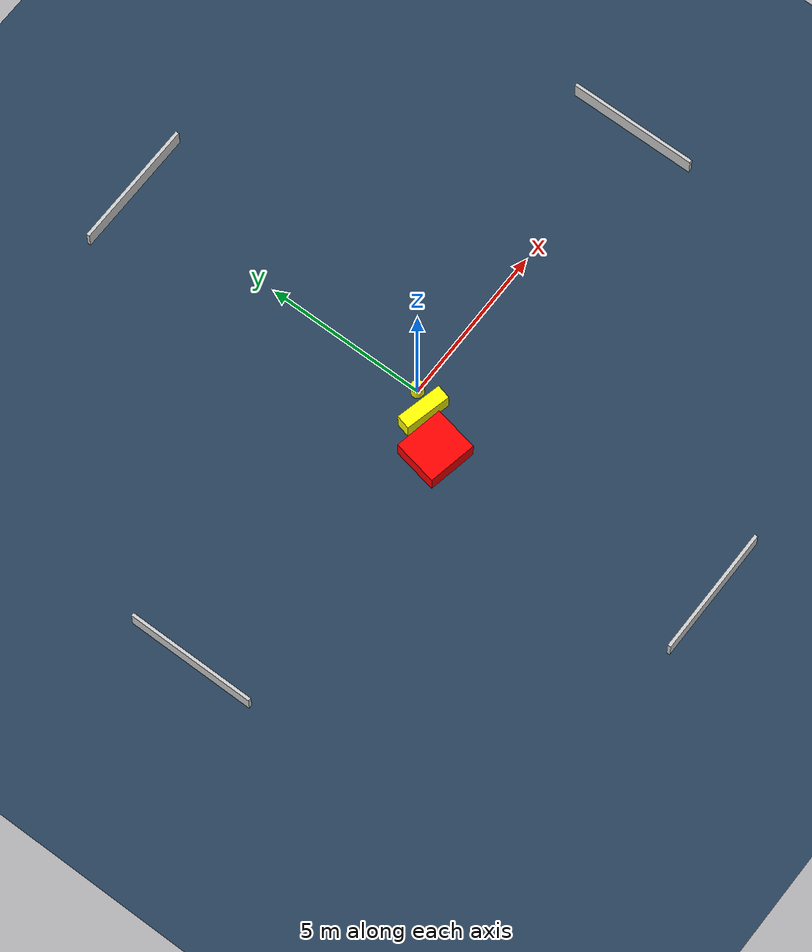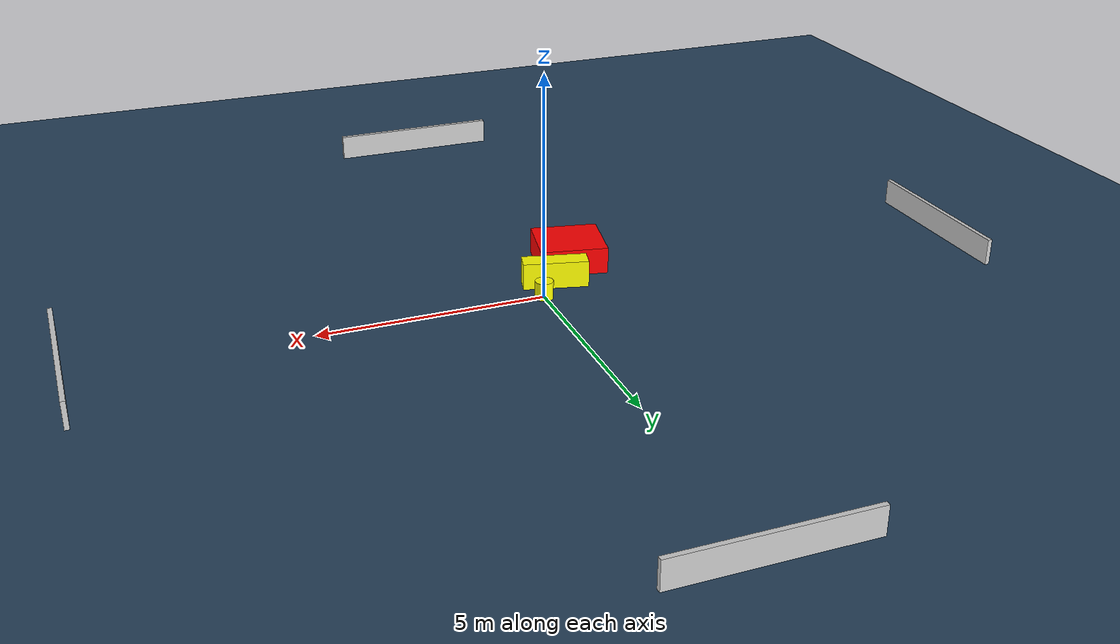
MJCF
<?xml version="1.0" ?>
<mujoco model="generated_environment">
  <option timestep="0.01" integrator="RK4" cone="elliptic"/>
  <default>
    <geom density="1"/>
  </default>
  <asset>
    <texture builtin="gradient" height="3072" name="skybox" rgb1="0.3 0.5 0.7" rgb2="0 0 0" type="skybox" width="512"/>
    <texture builtin="checker" height="300" name="groundplane" rgb1="0.2 0.3 0.4" rgb2="0.1 0.2 0.3" type="2d" width="300"/>
    <material name="groundplane" reflectance="0.2" texrepeat="5 5" texture="groundplane"/>
  </asset>
  <worldbody>
    <light dir="0 0 -1" directional="true" pos="0 0 1.5"/>
    <geom condim="3" friction="0.5 0.005 0.001" material="groundplane" name="floor" pos="0 0 0" size="0 0 0.05" type="plane"/>
    <body name="walls">
      <geom name="wall_1" condim="4" pos="-10.0 0.0 0.3" rgba="0.800000011920929 0.800000011920929 0.800000011920929 1.0" size="0.05 2.0 0.3" type="box"/>
      <geom name="wall_2" condim="4" pos="10.0 0.0 0.3" rgba="0.800000011920929 0.800000011920929 0.800000011920929 1.0" size="0.05 2.0 0.3" type="box"/>
      <geom name="wall_3" condim="4" pos="0.0 -10.0 0.3" rgba="0.800000011920929 0.800000011920929 0.800000011920929 1.0" size="2.0 0.05 0.3" type="box"/>
      <geom name="wall_4" condim="4" pos="0.0 10.0 0.3" rgba="0.800000011920929 0.800000011920929 0.800000011920929 1.0" size="2.0 0.05 0.3" type="box"/>
    </body>
    <body name="robot">
      <joint name="joint_x" type="slide" pos="0 0 0" axis="1 0 0"/>
      <joint name="joint_y" type="slide" pos="0 0 0" axis="0 1 0"/>
      <geom name="robot" type="cylinder" pos="0.0 0.0 0.2" size="0.2 0.2 0.0" mass="5.0" friction="1.0 0.005 0.0001" condim="4" rgba="1.0 1.0 0.0 1.0"/>
    </body>
    <body name="obstacle_1_movable">
      <geom name="obstacle_1_movable" condim="4" pos="-0.4631945627762726 -0.55349097668141 0.3" euler="0 0 76.41055785205137" friction="0.0 0.005 0.001" rgba="1.0 1.0 0.0 1.0" size="0.2200545595002427 0.7226239140668338 0.3" type="box" mass="0.1"/>
      <joint type="free"/>
    </body>
    <body name="obstacle_2_static">
      <geom name="obstacle_2_static" condim="4" pos="-1.1731370302371593 -1.508932656514631 0.3" euler="0 0 168.9574183943905" friction="0.0 0.005 0.001" rgba="1.0 0.0 0.0 1.0" size="0.7603718678409022 0.701373690395295 0.3" type="box"/>
    </body>
  </worldbody>
  <actuator>
    <motor name="actuator_x" joint="joint_x" gear="1" ctrlrange="-1 1"/>
    <motor name="actuator_y" joint="joint_y" gear="1" ctrlrange="-1 1"/>
  </actuator>
</mujoco>
